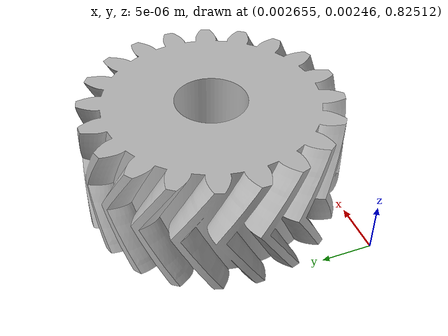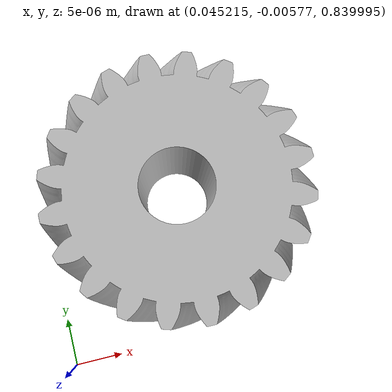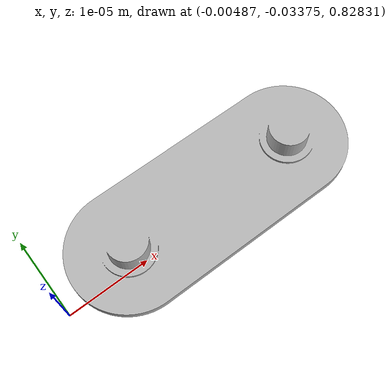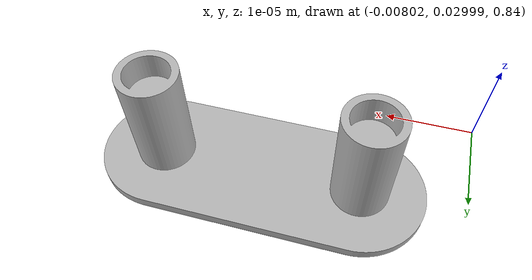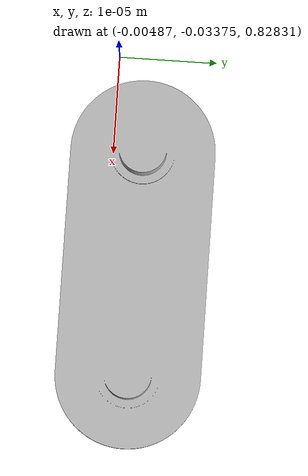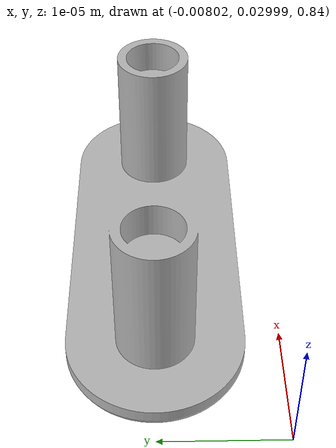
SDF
<sdf version="1.7">
 <world name="default">
  <model name="ground_plane">
   <static>1</static>
   <link name="link">
    <collision name="collision">
     <geometry><plane><normal>0 0 1</normal><size>100 100</size></plane></geometry>
     <surface><friction><ode><mu>100</mu><mu2>50</mu2></ode></friction></surface>
    </collision>
    <visual name="visual">
     <cast_shadows>0</cast_shadows>
     <geometry><plane><normal>0 0 1</normal><size>100 100</size></plane></geometry>
     <material>
      <script><uri>file://media/materials/scripts/gazebo.material</uri><name>Gazebo/Grey</name></script>
     </material>
    </visual>
   </link>
  </model>
  <gravity>0 0 -9.8</gravity>
  <magnetic_field>6e-06 2.3e-05 -4.2e-05</magnetic_field>
  <atmosphere type="adiabatic"/>
  <physics name="default_physics" default="0" type="ode">
   <max_step_size>0.001</max_step_size>
   <real_time_factor>1</real_time_factor>
   <real_time_update_rate>1000</real_time_update_rate>
  </physics>
  <scene><ambient>0.4 0.4 0.4 1</ambient><background>0.7 0.7 0.7 1</background><shadows>1</shadows></scene>
  <spherical_coordinates>
   <surface_model>EARTH_WGS84</surface_model>
   <latitude_deg>0</latitude_deg>
   <longitude_deg>0</longitude_deg>
   <elevation>0</elevation>
   <heading_deg>0</heading_deg>
  </spherical_coordinates>
  <light name="user_point_light_0" type="point">
   <pose>0 0 2 0 -0 0</pose>
   <diffuse>0.5 0.5 0.5 1</diffuse>
   <specular>0.1 0.1 0.1 1</specular>
   <attenuation>
    <range>20</range>
    <constant>0.5</constant>
    <linear>0.01</linear>
    <quadratic>0.001</quadratic>
   </attenuation>
   <cast_shadows>0</cast_shadows>
   <direction>0 0 -1</direction>
   <spot><inner_angle>0</inner_angle><outer_angle>0</outer_angle><falloff>0</falloff></spot>
  </light>
  <model name="left_gear">
   <static>1</static>
   <link name="link">
    <collision name="collision">
     <geometry>
      <mesh><scale>0.001 0.001 0.001</scale><uri>file://left_gear/meshes/left_gear.dae</uri></mesh>
     </geometry>
    </collision>
    <visual name="visual">
     <geometry>
      <mesh><scale>0.001 0.001 0.001</scale><uri>file://left_gear/meshes/left_gear.dae</uri></mesh>
     </geometry>
    </visual>
   </link>
   <pose>0.002668 0.002471 0.825125 0 -0 0</pose>
  </model>
  <model name="bottom_casing">
   <static>1</static>
   <link name="link">
    <collision name="collision">
     <geometry>
      <mesh><scale>0.001 0.001 0.001</scale><uri>model://bottom_casing/meshes/bottom_casing.dae</uri></mesh>
     </geometry>
    </collision>
    <visual name="visual">
     <geometry>
      <mesh><scale>0.001 0.001 0.001</scale><uri>model://bottom_casing/meshes/bottom_casing.dae</uri></mesh>
     </geometry>
    </visual>
   </link>
   <pose>-0.007997 0.03 0.84 0 -0 0</pose>
  </model>
  <model name="right_gear">
   <static>1</static>
   <link name="link">
    <collision name="collision">
     <geometry>
      <mesh><scale>0.001 0.001 0.001</scale><uri>model://right_gear/meshes/right_gear.dae</uri></mesh>
     </geometry>
    </collision>
    <visual name="visual">
     <geometry>
      <mesh><scale>0.001 0.001 0.001</scale><uri>model://right_gear/meshes/right_gear.dae</uri></mesh>
     </geometry>
    </visual>
   </link>
   <pose>0.04523 -0.005755 0.84 0 -0 0</pose>
  </model>
  <model name="top_casing">
   <static>1</static>
   <link name="link">
    <collision name="collision">
     <geometry>
      <mesh><scale>0.001 0.001 0.001</scale><uri>model://top_casing/meshes/top_casing.dae</uri></mesh>
     </geometry>
    </collision>
    <visual name="visual">
     <geometry>
      <mesh><scale>0.001 0.001 0.001</scale><uri>model://top_casing/meshes/top_casing.dae</uri></mesh>
     </geometry>
    </visual>
   </link>
   <pose>-0.004849 -0.033747 0.828307 0 -0 0</pose>
  </model>
 </world>
</sdf>
